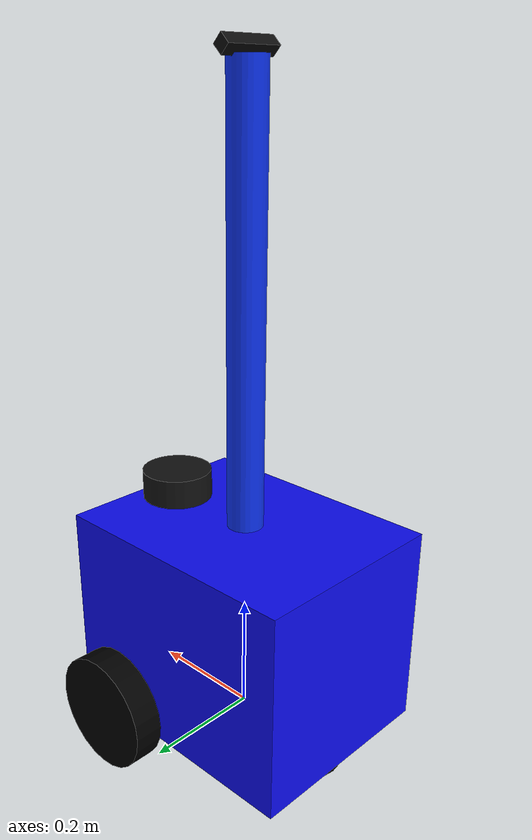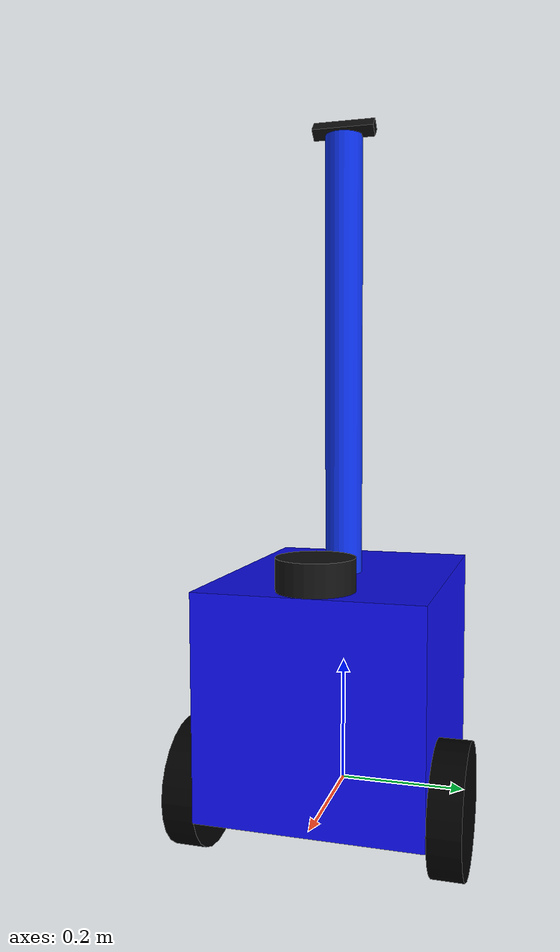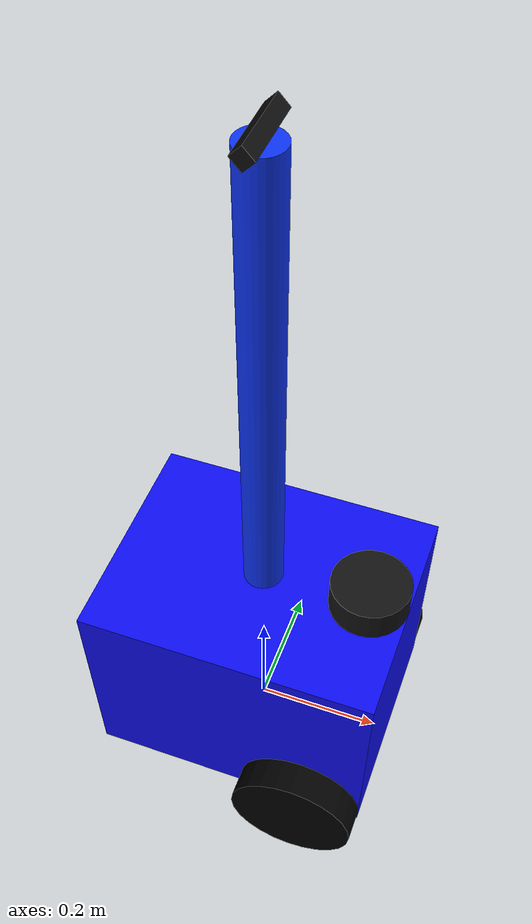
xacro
<?xml version="1.0"?>
<robot name="justina" xmlns:xacro="http://www.ros.org/wiki/xacro">
  <xacro:include filename="$(find justina_description)/urdf/justina_base.xacro"/>
  <xacro:include filename="$(find justina_description)/urdf/justina_upper.xacro"/>

  <joint name="base_torso_joint" type="fixed">
    <origin xyz="0.0 0.0 0.525" rpy="0 0 0"/>
    <parent link="body_link"/>
    <child link="torso_link"/>
  </joint>
</robot>

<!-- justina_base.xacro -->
<robot name="justina_base" xmlns:xacro="http://www.ros.org/wiki/xacro">

    <!-- Robot Parameters -->
    <xacro:property name="PI" value="3.14159265"/>
    <xacro:property name="body_length" value="0.45"/>
    <xacro:property name="body_width" value="0.35"/>
    <xacro:property name="body_height" value="0.35"/>
    <xacro:property name="body_density" value="7850.0"/> <!-- Steel -->
    <xacro:property name="body_mass" value="${body_density * body_length * body_height * body_width}"/>
    <xacro:property name="body_inertia_x" value="${1.0/12.0 * body_mass * (body_height*body_height + body_width*body_width)}"/>
    <xacro:property name="body_inertia_y" value="${1.0/12.0 * body_mass * (body_length*body_length + body_height*body_height)}"/>
    <xacro:property name="body_inertia_z" value="${1.0/12.0 * body_mass * (body_length*body_length + body_width*body_width)}"/>

    <xacro:property name="wheel_radius" value="0.1"/>
    <xacro:property name="wheel_width" value="0.05"/>
    <xacro:property name="wheel_separation" value="${body_width + wheel_width}"/>
    <xacro:property name="wheel_offset" value="${body_length/2 - wheel_radius}"/>
    <xacro:property name="wheel_offset_z" value="0.1"/>
    <xacro:property name="wheel_density" value="900"/> <!-- Ruber -->
    <xacro:property name="wheel_mass" value="${wheel_density * PI * wheel_radius * wheel_radius * wheel_width}"/>
    <xacro:property name="wheel_inertia_x" value="${1.0/12.0 * wheel_mass * (3*wheel_radius*wheel_radius + wheel_width*wheel_width)}"/>
    <xacro:property name="wheel_inertia_y" value="${1.0/12.0 * wheel_mass * (3*wheel_radius*wheel_radius + wheel_width*wheel_width)}"/>
    <xacro:property name="wheel_inertia_z" value="${1.0/2.0 * wheel_mass * wheel_radius * wheel_radius}"/>

    <xacro:property name="caster_radius" value="0.1"/>
    <xacro:property name="caster_offset" value="${body_length/2 - caster_radius}"/>
    <xacro:property name="caster_density" value="0.1"/>
    <xacro:property name="caster_mass" value="${caster_density * 4.0/3.0 * PI * caster_radius * caster_radius * caster_radius}"/>
    <xacro:property name="caster_inertia_x" value="${2.0/5.0 * caster_mass * caster_radius * caster_radius}"/>
    <xacro:property name="caster_inertia_y" value="${2.0/5.0 * caster_mass * caster_radius * caster_radius}"/>
    <xacro:property name="caster_inertia_z" value="${2.0/5.0 * caster_mass * caster_radius * caster_radius}"/>

    <xacro:property name="laser_radius" value="0.06"/>
    <xacro:property name="laser_height" value="0.05"/>
    <xacro:property name="laser_mass" value="0.2"/>
    <xacro:property name="laser_inertia_xx" value="${(1/12) * laser_mass * (3*laser_radius*laser_radius + laser_height*laser_height)}"/>
    <xacro:property name="laser_inertia_yy" value="${(1/12) * laser_mass * (3*laser_radius*laser_radius + laser_height*laser_height)}"/>
    <xacro:property name="laser_inertia_zz" value="${(1/2) * laser_mass * laser_radius*laser_radius}"/>

    <!-- Control Parameters -->
    <xacro:property name="max_linear_acceleration" value="10"/>

    <!-- Links -->
    <link name="base_link"/>
    <!-- Body Link -->
    <link name="body_link">
        <visual>
            <origin xyz="0.0 0.0 0.0" rpy="0.0 0.0 0.0"/>
            <geometry>
                <box size="${body_length} ${body_width} ${body_height}"/>
            </geometry>
            <material name="body_material">
                <color rgba="0.05 0.05 0.95 1.0"/>
            </material>
        </visual>
        <collision>
            <origin xyz="0.0 0.0 0.0" rpy="0.0 0.0 0.0"/>
            <geometry>
                <box size="${body_length} ${body_width} ${body_height}"/>
            </geometry>
        </collision>
        <inertial>
            <mass value="10"/>
            <inertia ixx="${body_inertia_x}" ixy="0.0" ixz="0.0" iyy="${body_inertia_y}" iyz="0" izz="${body_inertia_z}"/>
            <origin xyz="0 0 0" rpy="0 0 0"/>
        </inertial>
    </link>

    <!-- Left Wheel -->
    <link name="left_wheel_link">
        <visual>
            <origin xyz="0.0 0.0 0.0" rpy="1.570795 0.0 0.0"/>
            <geometry>
                <cylinder radius="${wheel_radius}" length="${wheel_width}"/>
            </geometry>
            <material name="wheel_material">
                <color rgba="0.0 0.0 0.0 1.0"/>
            </material>
        </visual>
        <collision>
            <origin xyz="0.0 0.0 0.0" rpy="1.570795 0.0 0.0"/>
            <geometry>
                <cylinder radius="${wheel_radius}" length="${wheel_width}"/>
            </geometry>
        </collision>
        <inertial>
            <mass value="2"/>
            <inertia ixx="${wheel_inertia_x}" ixy="0.0" ixz="0.0" iyy="${wheel_inertia_y}" iyz="0" izz="${wheel_inertia_z}"/>
            <origin xyz="0.0 0.0 0.0" rpy="1.570795 0.0 0.0"/>
        </inertial>
    </link>

    <!-- Right Wheel -->
    <link name="right_wheel_link">
        <visual>
            <origin xyz="0.0 0.0 0.0" rpy="1.570795 0.0 0.0"/>
            <geometry>
                <cylinder radius="${wheel_radius}" length="${wheel_width}"/>
            </geometry>
            <material name="wheel_material">
                <color rgba="0.0 0.0 0.0 1.0"/>
            </material>
        </visual>
        <collision>
            <origin xyz="0.0 0.0 0.0" rpy="1.570795 0.0 0.0"/>
            <geometry>
                <cylinder radius="${wheel_radius}" length="${wheel_width}"/>
            </geometry>
        </collision>
        <inertial>
            <mass value="2"/>
            <inertia ixx="${wheel_inertia_x}" ixy="0.0" ixz="0.0" iyy="${wheel_inertia_y}" iyz="0" izz="${wheel_inertia_z}"/>
            <origin xyz="0.0 0.0 0.0" rpy="1.570795 0.0 0.0"/>
        </inertial>
    </link>

    <!-- Caster Wheel -->
    <link name="caster_link">
        <visual>
            <origin xyz="0.0 0.0 0.0" rpy="0.0 0.0 0.0"/>
            <geometry>
                <sphere radius="${caster_radius}"/>
            </geometry>
            <material name="caster_material">
                <color rgba="0.0 0.0 0.0 1.0"/>
            </material>
        </visual>
        <collision>
            <origin xyz="0.0 0.0 0.0" rpy="0.0 0.0 0.0"/>
            <geometry>
                <sphere radius="${caster_radius}"/>
            </geometry>
        </collision>
        <inertial>
            <mass value="0.5"/>
            <inertia ixx="${caster_inertia_x}" ixy="0.0" ixz="0.0" iyy="${caster_inertia_y}" iyz="0" izz="${caster_inertia_z}"/>
            <origin xyz="0 0 0" rpy="0 0 0"/>
        </inertial>
    </link>

    <link name="laser_link">
      <visual>
         <origin xyz="0 0 0"/>
         <geometry>
            <cylinder length="${laser_height}" radius="${laser_radius}"/>
         </geometry>
         <material name="laser_material">
            <color rgba="0.07 0.07 0.07 1.0"/>
         </material>
      </visual>
      <collision>
         <origin xyz="0 0 0"/>
         <geometry>
            <cylinder length="${laser_height}" radius="${laser_radius}"/>
         </geometry>
      </collision>
      <inertial>
        <mass value="${laser_mass}"/>
        <inertia ixx="${laser_inertia_xx}" ixy="0.0" ixz="0.0" iyy="${laser_inertia_yy}" iyz="0" izz="${laser_inertia_zz}"/>
        <origin xyz="0 0 0" rpy="0 0 0"/>
      </inertial>
   </link>

   <!-- Joints -->
   <joint name="base_to_body" type="fixed">
     <origin xyz="0 0 ${body_height/2}" rpy="0 0 0"/>
     <parent link="base_link"/>
     <child link="body_link"/>
   </joint>

   <!-- Left Wheel Joint -->
   <joint name="left_wheel_joint" type="continuous">
     <origin xyz="${wheel_offset} ${wheel_separation/2} ${-wheel_radius/2 - wheel_offset_z}" rpy="0 0 0"/>
     <parent link="body_link"/>
     <child link="left_wheel_link"/>
     <axis xyz="0 1 0"/>
     <limit effort="100" velocity="10.0"/>
     <dynamics damping="0.1" friction="0.1"/>
   </joint>

   <!-- Right Wheel Joint -->
   <joint name="right_wheel_joint" type="continuous">
        <origin xyz="${wheel_offset} ${-wheel_separation/2} ${-wheel_radius/2 - wheel_offset_z}" rpy="0 0 0"/>
        <parent link="body_link"/>
        <child link="right_wheel_link"/>
        <axis xyz="0 1 0"/>
        <limit effort="100" velocity="10.0"/>
        <dynamics damping="0.1" friction="0.1"/>
    </joint>

    <!-- Caster Wheel Joint (fixed) -->
    <joint name="caster_joint" type="fixed">
        <origin xyz="${-caster_offset} 0 ${-caster_radius/2 - wheel_offset_z}" rpy="0 0 0"/>
        <parent link="body_link"/>
        <child link="caster_link"/>
    </joint>

    <!-- Body to laser joint -->
    <joint name="laser_joint" type="fixed">
      <origin xyz="${body_length/2 - laser_radius} 0.0 ${body_height/2+laser_height/2}" rpy="0 0 0"/>
      <parent link="body_link"/>
      <child link="laser_link"/>
    </joint>

    <!-- Gazebo Parameters -->
    <gazebo reference="body_link">
        <mu1>1.0</mu1>
        <mu2>1.0</mu2>
    </gazebo>

    <gazebo reference="right_wheel_link">
        <mu1>1.0</mu1>
        <mu2>1.0</mu2>
    </gazebo>

    <gazebo reference="left_wheel_link">
        <mu1>1.0</mu1>
        <mu2>1.0</mu2>
    </gazebo>

    <gazebo reference="caster_link">
        <mu1>0.000001</mu1>
        <mu2>0.000001</mu2>
    </gazebo>

    <gazebo reference="laser_link">
        <mu1>1.0</mu1>
        <mu2>1.0</mu2>
    </gazebo>

    <!-- Gazebo Plugins -->
    <gazebo>
      <plugin filename="gz-sim-diff-drive-system" name="gz::sim::systems::DiffDrive">
        <right_joint>right_wheel_joint</right_joint>
        <left_joint>left_wheel_joint</left_joint>
        <wheel_separation>${wheel_separation}</wheel_separation>
        <wheel_radius>${wheel_radius}</wheel_radius>
        <max_linear_acceleration>${max_linear_acceleration}</max_linear_acceleration>
        <odom_publish_frequency>100</odom_publish_frequency>
        <topic>cmd_vel</topic>
        <tf_topic>tf</tf_topic>
        <frame_id>/odom</frame_id>
        <child_frame_id>/base_link</child_frame_id>
        <odom_topic>odom</odom_topic>
      </plugin>

      <plugin filename="gz-sim-joint-state-publisher-system" name="gz::sim::systems::JointStatePublisher">
        <topic>joint_states</topic>
        <joint_name>right_wheel_joint</joint_name>
        <joint_name>left_wheel_joint</joint_name>
      </plugin>
    </gazebo>

    <gazebo reference="laser_link">
      <sensor name="laser" type="gpu_lidar">
         <pose> 0 0 0 0 0 0 </pose>
         <always_on>true</always_on>
         <visualize>true</visualize>
         <update_rate>10</update_rate>
         <topic>scan</topic>
         <gz_frame_id>laser_link</gz_frame_id>
         <lidar>
           <scan>
             <horizontal>
               <samples>480</samples>
               <min_angle>-2.0944</min_angle>
               <max_angle>2.0944</max_angle>
             </horizontal>
           </scan>
           <range>
             <min>0.1</min>
             <max>10.0</max>
           </range>
           <noise>
             <type>gaussian</type>
             <mean>0.0</mean>
             <stddev>0.02</stddev>
           </noise>
         </lidar>
      </sensor>
    </gazebo>

</robot>

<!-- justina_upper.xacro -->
<robot name="justina_base" xmlns:xacro="http://www.ros.org/wiki/xacro">

    <xacro:property name="torso_radius" value="0.03"/>
    <xacro:property name="torso_height" value="0.7"/>
    <xacro:property name="torso_mass" value="1.0"/>
    <xacro:property name="torso_inertia_x" value="${1.0/12.0 * torso_mass * (3*torso_radius*torso_radius + torso_height*torso_height)}"/>
    <xacro:property name="torso_inertia_y" value="${1.0/12.0 * torso_mass * (3*torso_radius*torso_radius + torso_height*torso_height)}"/>
    <xacro:property name="torso_inertia_z" value="${1.0/2.0 * torso_mass * torso_radius * torso_radius}"/>

    <!-- Left Wheel -->
    <link name="torso_link">
        <visual>
            <origin xyz="0.0 0.0 0.0" rpy="0.0 0.0 0.0"/>
            <geometry>
                <cylinder radius="${torso_radius}" length="${torso_height}"/>
            </geometry>
            <material name="torso_material">
                <color rgba="0.05 0.2 0.95 1.0"/>
            </material>
        </visual>
        <collision>
            <origin xyz="0.0 0.0 0.0" rpy="0.0 0.0 0.0"/>
            <geometry>
                <cylinder radius="${torso_radius}" length="${torso_height}"/>
            </geometry>
        </collision>
        <inertial>
            <mass value="${torso_mass}"/>
            <inertia ixx="${torso_inertia_x}" ixy="0.0" ixz="0.0" iyy="${torso_inertia_y}" iyz="0" izz="${torso_inertia_z}"/>
            <origin xyz="0.0 0.0 0.0" rpy="0.0 0.0 0.0"/>
        </inertial>
    </link>

    <link name="realsense_link">
      <visual>
        <origin xyz="0.0 0.0 0.0" rpy="0.0 0.0 0.0"/>
        <geometry>
          <box size="0.02 0.1 0.02"/>
        </geometry>
        <material name="camera_material">
          <color rgba="0.05 0.05 0.05 1.0"/>
        </material>
      </visual>
      <collision>
        <origin xyz="0.0 0.0 0.0" rpy="0.0 0.0 0.0"/>
        <geometry>
          <box size="0.02 0.1 0.02"/>
        </geometry>
      </collision>
      <inertial>
        <mass value="0.4"/>
        <inertia ixx="0.001" ixy="0.0" ixz="0.0" iyy="0.001" iyz="0" izz="0.001"/>
        <origin xyz="0.0 0.0 0.0" rpy="0.0 0.0 0.0"/>
      </inertial>
    </link>
    <joint name="torso_camera_joint" type="fixed">
      <origin xyz="0.0 0.0 0.36" rpy="0 0.8 0"/>
      <parent link="torso_link"/>
      <child link="realsense_link"/>
    </joint>

    <gazebo reference="realsense_link">
      <sensor name="camera" type="camera">
        <always_on>true</always_on>
        <visualize>true</visualize>
        <update_rate>30</update_rate>
        <topic>camera/image_raw</topic>
        <gz_frame_id>camera_rgb_frame</gz_frame_id>
        <camera name="intel_realsense_r200">
          <camera_info_topic>camera/camera_info</camera_info_topic>
          <image>
            <width>640</width>
            <height>480</height>
          </image>
          <noise>
            <type>gaussian</type>
            <mean>0.0</mean>
            <stddev>0.05</stddev>
          </noise>
        </camera>
      </sensor>
    </gazebo>

</robot>
